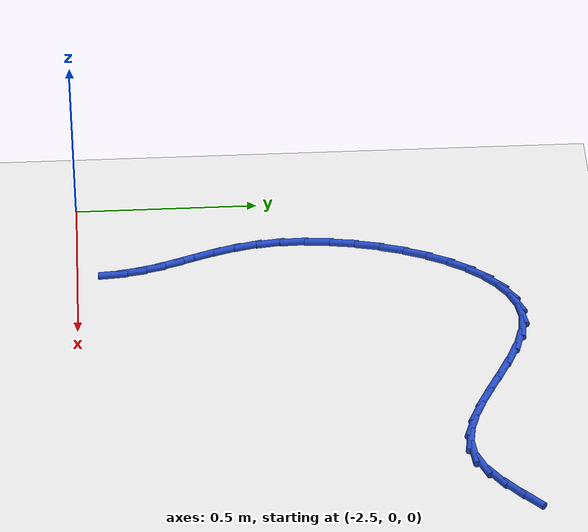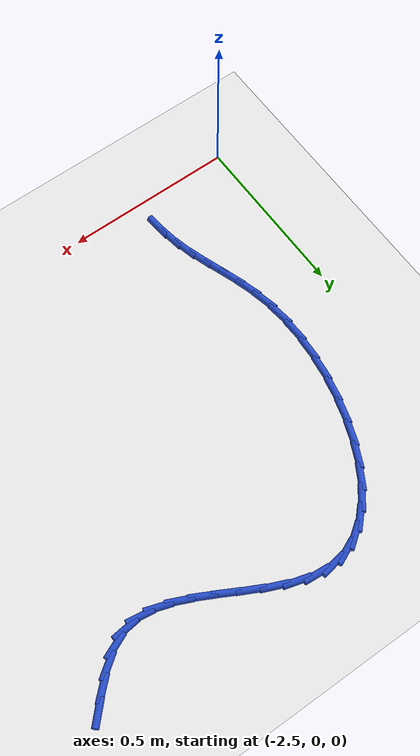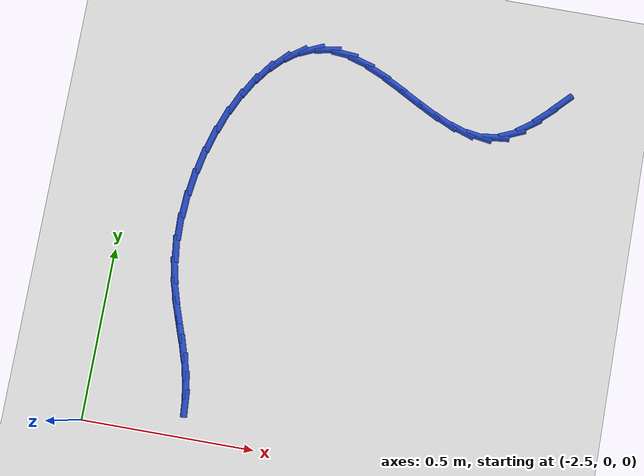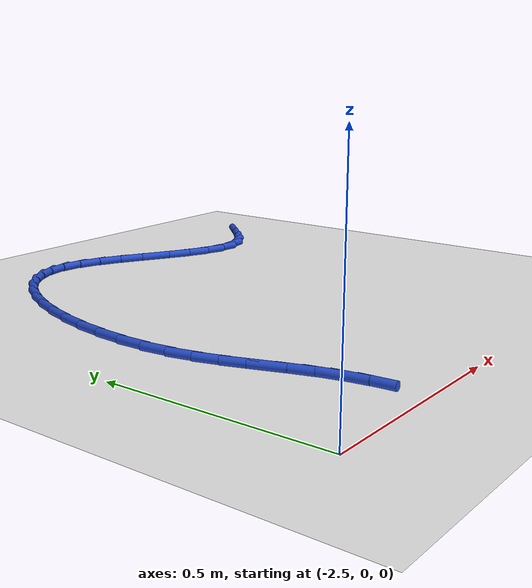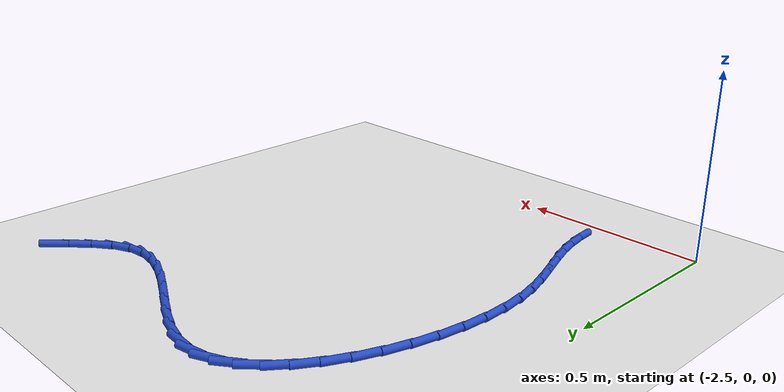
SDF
<sdf version="1.6">
 <world name="default">
  <model name="ground_plane">
   <static>1</static>
   <link name="link">
    <collision name="collision">
     <geometry><plane><normal>0 0 1</normal><size>100 100</size></plane></geometry>
     <surface><friction><ode><mu>100</mu><mu2>50</mu2></ode></friction></surface>
    </collision>
    <visual name="visual">
     <cast_shadows>0</cast_shadows>
     <geometry><plane><normal>0 0 1</normal><size>100 100</size></plane></geometry>
     <material>
      <script><uri>file://media/materials/scripts/gazebo.material</uri><name>Gazebo/WhiteGlow</name></script>
     </material>
    </visual>
   </link>
  </model>
  <model name="line">
   <link name="link_36">
    <pose>-1.2900693237859646 1.151390247275858 0.01 0 1.57 0.7939183454649416</pose>
    <collision name="collision">
     <geometry><cylinder><radius>0.01</radius><length>0.08</length></cylinder></geometry>
    </collision>
    <visual name="visual">
     <material>
      <script><name>Gazebo/Blue</name><uri>file://media/materials/scripts/gazebo.material</uri></script>
     </material>
     <geometry><cylinder><radius>0.01</radius><length>0.08</length></cylinder></geometry>
    </visual>
   </link>
   <link name="link_37">
    <pose>-1.3322619856138638 1.1084724109601836 0.01 0 1.57 0.7435088943617072</pose>
    <collision name="collision">
     <geometry><cylinder><radius>0.01</radius><length>0.08</length></cylinder></geometry>
    </collision>
    <visual name="visual">
     <material>
      <script><name>Gazebo/Blue</name><uri>file://media/materials/scripts/gazebo.material</uri></script>
     </material>
     <geometry><cylinder><radius>0.01</radius><length>0.08</length></cylinder></geometry>
    </visual>
   </link>
   <link name="link_38">
    <pose>-1.3748377329773953 1.0693221117406349 0.01 0 1.57 0.6232452287033694</pose>
    <collision name="collision">
     <geometry><cylinder><radius>0.01</radius><length>0.08</length></cylinder></geometry>
    </collision>
    <visual name="visual">
     <material>
      <script><name>Gazebo/Blue</name><uri>file://media/materials/scripts/gazebo.material</uri></script>
     </material>
     <geometry><cylinder><radius>0.01</radius><length>0.08</length></cylinder></geometry>
    </visual>
   </link>
   <link name="link_39">
    <pose>-1.4186417300604435 1.037834939533997 0.01 0 1.57 0.409792824650364</pose>
    <collision name="collision">
     <geometry><cylinder><radius>0.01</radius><length>0.08</length></cylinder></geometry>
    </collision>
    <visual name="visual">
     <material>
      <script><name>Gazebo/Blue</name><uri>file://media/materials/scripts/gazebo.material</uri></script>
     </material>
     <geometry><cylinder><radius>0.01</radius><length>0.08</length></cylinder></geometry>
    </visual>
   </link>
   <link name="link_40">
    <pose>-1.4645191410468903 1.0179064842570567 0.01 0 1.57 0.10918027138400697</pose>
    <collision name="collision">
     <geometry><cylinder><radius>0.01</radius><length>0.08</length></cylinder></geometry>
    </collision>
    <visual name="visual">
     <material>
      <script><name>Gazebo/Blue</name><uri>file://media/materials/scripts/gazebo.material</uri></script>
     </material>
     <geometry><cylinder><radius>0.01</radius><length>0.08</length></cylinder></geometry>
    </visual>
   </link>
   <link name="link_41">
    <pose>-1.5131397471966364 1.012576879549368 0.01 0 1.57 -0.15075802445603628</pose>
    <collision name="collision">
     <geometry><cylinder><radius>0.01</radius><length>0.08</length></cylinder></geometry>
    </collision>
    <visual name="visual">
     <material>
      <script><name>Gazebo/Blue</name><uri>file://media/materials/scripts/gazebo.material</uri></script>
     </material>
     <geometry><cylinder><radius>0.01</radius><length>0.08</length></cylinder></geometry>
    </visual>
   </link>
   <link name="link_42">
    <pose>-1.5642412162302415 1.020339736731174 0.01 0 1.57 -0.32469964815816693</pose>
    <collision name="collision">
     <geometry><cylinder><radius>0.01</radius><length>0.08</length></cylinder></geometry>
    </collision>
    <visual name="visual">
     <material>
      <script><name>Gazebo/Blue</name><uri>file://media/materials/scripts/gazebo.material</uri></script>
     </material>
     <geometry><cylinder><radius>0.01</radius><length>0.08</length></cylinder></geometry>
    </visual>
   </link>
   <link name="link_43">
    <pose>-1.6172527603636977 1.0381841295563536 0.01 0 1.57 -0.42981292977353774</pose>
    <collision name="collision">
     <geometry><cylinder><radius>0.01</radius><length>0.08</length></cylinder></geometry>
    </collision>
    <visual name="visual">
     <material>
      <script><name>Gazebo/Blue</name><uri>file://media/materials/scripts/gazebo.material</uri></script>
     </material>
     <geometry><cylinder><radius>0.01</radius><length>0.08</length></cylinder></geometry>
    </visual>
   </link>
   <link name="link_44">
    <pose>-1.671603394225443 1.0630981680161329 0.01 0 1.57 -0.48393693534117505</pose>
    <collision name="collision">
     <geometry><cylinder><radius>0.01</radius><length>0.08</length></cylinder></geometry>
    </collision>
    <visual name="visual">
     <material>
      <script><name>Gazebo/Blue</name><uri>file://media/materials/scripts/gazebo.material</uri></script>
     </material>
     <geometry><cylinder><radius>0.01</radius><length>0.08</length></cylinder></geometry>
    </visual>
   </link>
   <link name="link_45">
    <pose>-1.7267221324439133 1.092069962101737 0.01 0 1.57 -0.4971898282523331</pose>
    <collision name="collision">
     <geometry><cylinder><radius>0.01</radius><length>0.08</length></cylinder></geometry>
    </collision>
    <visual name="visual">
     <material>
      <script><name>Gazebo/Blue</name><uri>file://media/materials/scripts/gazebo.material</uri></script>
     </material>
     <geometry><cylinder><radius>0.01</radius><length>0.08</length></cylinder></geometry>
    </visual>
   </link>
   <link name="link_46">
    <pose>-1.782037989647548 1.1220876218043914 0.01 0 1.57 -0.4720664089780338</pose>
    <collision name="collision">
     <geometry><cylinder><radius>0.01</radius><length>0.08</length></cylinder></geometry>
    </collision>
    <visual name="visual">
     <material>
      <script><name>Gazebo/Blue</name><uri>file://media/materials/scripts/gazebo.material</uri></script>
     </material>
     <geometry><cylinder><radius>0.01</radius><length>0.08</length></cylinder></geometry>
    </visual>
   </link>
   <link name="link_47">
    <pose>-1.8369799804647826 1.1501392571153215 0.01 0 1.57 -0.4038287956365215</pose>
    <collision name="collision">
     <geometry><cylinder><radius>0.01</radius><length>0.08</length></cylinder></geometry>
    </collision>
    <visual name="visual">
     <material>
      <script><name>Gazebo/Blue</name><uri>file://media/materials/scripts/gazebo.material</uri></script>
     </material>
     <geometry><cylinder><radius>0.01</radius><length>0.08</length></cylinder></geometry>
    </visual>
   </link>
   <link name="link_48">
    <pose>-1.8909771195240574 1.1732129780257539 0.01 0 1.57 -0.2798713648292134</pose>
    <collision name="collision">
     <geometry><cylinder><radius>0.01</radius><length>0.08</length></cylinder></geometry>
    </collision>
    <visual name="visual">
     <material>
      <script><name>Gazebo/Blue</name><uri>file://media/materials/scripts/gazebo.material</uri></script>
     </material>
     <geometry><cylinder><radius>0.01</radius><length>0.08</length></cylinder></geometry>
    </visual>
   </link>
   <link name="link_49">
    <pose>-1.9434584214538078 1.1882968945269123 0.01 0 1.57 -0.08105024340451306</pose>
    <collision name="collision">
     <geometry><cylinder><radius>0.01</radius><length>0.08</length></cylinder></geometry>
    </collision>
    <visual name="visual">
     <material>
      <script><name>Gazebo/Blue</name><uri>file://media/materials/scripts/gazebo.material</uri></script>
     </material>
     <geometry><cylinder><radius>0.01</radius><length>0.08</length></cylinder></geometry>
    </visual>
   </link>
   <link name="link_50">
    <pose>-1.9938537643696883 1.1923904169079258 0.01 0 1.57 0.1767937433057892</pose>
    <collision name="collision">
     <geometry><cylinder><radius>0.01</radius><length>0.08</length></cylinder></geometry>
    </collision>
    <visual name="visual">
     <material>
      <script><name>Gazebo/Blue</name><uri>file://media/materials/scripts/gazebo.material</uri></script>
     </material>
     <geometry><cylinder><radius>0.01</radius><length>0.08</length></cylinder></geometry>
    </visual>
   </link>
   <link name="link_51">
    <pose>-2.0416961822515827 1.183842937223414 0.01 0 1.57 0.4222356093087981</pose>
    <collision name="collision">
     <geometry><cylinder><radius>0.01</radius><length>0.08</length></cylinder></geometry>
    </collision>
    <visual name="visual">
     <material>
      <script><name>Gazebo/Blue</name><uri>file://media/materials/scripts/gazebo.material</uri></script>
     </material>
     <geometry><cylinder><radius>0.01</radius><length>0.08</length></cylinder></geometry>
    </visual>
   </link>
   <link name="link_52">
    <pose>-2.0867183438056847 1.1636164303635494 0.01 0 1.57 0.6308229185235149</pose>
    <collision name="collision">
     <geometry><cylinder><radius>0.01</radius><length>0.08</length></cylinder></geometry>
    </collision>
    <visual name="visual">
     <material>
      <script><name>Gazebo/Blue</name><uri>file://media/materials/scripts/gazebo.material</uri></script>
     </material>
     <geometry><cylinder><radius>0.01</radius><length>0.08</length></cylinder></geometry>
    </visual>
   </link>
   <link name="link_53">
    <pose>-2.1286757558103555 1.1329717488559319 0.01 0 1.57 0.8001049659863537</pose>
    <collision name="collision">
     <geometry><cylinder><radius>0.01</radius><length>0.08</length></cylinder></geometry>
    </collision>
    <visual name="visual">
     <material>
      <script><name>Gazebo/Blue</name><uri>file://media/materials/scripts/gazebo.material</uri></script>
     </material>
     <geometry><cylinder><radius>0.01</radius><length>0.08</length></cylinder></geometry>
    </visual>
   </link>
   <link name="link_54">
    <pose>-2.167323925043959 1.0931697452281612 0.01 0 1.57 0.9364739404567173</pose>
    <collision name="collision">
     <geometry><cylinder><radius>0.01</radius><length>0.08</length></cylinder></geometry>
    </collision>
    <visual name="visual">
     <material>
      <script><name>Gazebo/Blue</name><uri>file://media/materials/scripts/gazebo.material</uri></script>
     </material>
     <geometry><cylinder><radius>0.01</radius><length>0.08</length></cylinder></geometry>
    </visual>
   </link>
   <link name="link_55">
    <pose>-2.2024183582848584 1.0454712720078372 0.01 0 1.57 1.0482140510514923</pose>
    <collision name="collision">
     <geometry><cylinder><radius>0.01</radius><length>0.08</length></cylinder></geometry>
    </collision>
    <visual name="visual">
     <material>
      <script><name>Gazebo/Blue</name><uri>file://media/materials/scripts/gazebo.material</uri></script>
     </material>
     <geometry><cylinder><radius>0.01</radius><length>0.08</length></cylinder></geometry>
    </visual>
   </link>
   <link name="link_56">
    <pose>-2.2337145623114147 0.9911371817225597 0.01 0 1.57 1.1426002073141763</pose>
    <collision name="collision">
     <geometry><cylinder><radius>0.01</radius><length>0.08</length></cylinder></geometry>
    </collision>
    <visual name="visual">
     <material>
      <script><name>Gazebo/Blue</name><uri>file://media/materials/scripts/gazebo.material</uri></script>
     </material>
     <geometry><cylinder><radius>0.01</radius><length>0.08</length></cylinder></geometry>
    </visual>
   </link>
   <link name="link_57">
    <pose>-2.2609680439019915 0.9314283268999284 0.01 0 1.57 1.2253784912663193</pose>
    <collision name="collision">
     <geometry><cylinder><radius>0.01</radius><length>0.08</length></cylinder></geometry>
    </collision>
    <visual name="visual">
     <material>
      <script><name>Gazebo/Blue</name><uri>file://media/materials/scripts/gazebo.material</uri></script>
     </material>
     <geometry><cylinder><radius>0.01</radius><length>0.08</length></cylinder></geometry>
    </visual>
   </link>
   <link name="link_58">
    <pose>-2.283934309834951 0.8676055600675437 0.01 0 1.57 1.3010543503079308</pose>
    <collision name="collision">
     <geometry><cylinder><radius>0.01</radius><length>0.08</length></cylinder></geometry>
    </collision>
    <visual name="visual">
     <material>
      <script><name>Gazebo/Blue</name><uri>file://media/materials/scripts/gazebo.material</uri></script>
     </material>
     <geometry><cylinder><radius>0.01</radius><length>0.08</length></cylinder></geometry>
    </visual>
   </link>
   <link name="link_59">
    <pose>-2.302368866888657 0.8009297337530047 0.01 0 1.57 1.3733338892159097</pose>
    <collision name="collision">
     <geometry><cylinder><radius>0.01</radius><length>0.08</length></cylinder></geometry>
    </collision>
    <visual name="visual">
     <material>
      <script><name>Gazebo/Blue</name><uri>file://media/materials/scripts/gazebo.material</uri></script>
     </material>
     <geometry><cylinder><radius>0.01</radius><length>0.08</length></cylinder></geometry>
    </visual>
   </link>
   <link name="link_60">
    <pose>-2.3160272218414706 0.7326617004839118 0.01 0 1.57 1.445540973952849</pose>
    <collision name="collision">
     <geometry><cylinder><radius>0.01</radius><length>0.08</length></cylinder></geometry>
    </collision>
    <visual name="visual">
     <material>
      <script><name>Gazebo/Blue</name><uri>file://media/materials/scripts/gazebo.material</uri></script>
     </material>
     <geometry><cylinder><radius>0.01</radius><length>0.08</length></cylinder></geometry>
    </visual>
   </link>
   <link name="link_61">
    <pose>-2.324664881471755 0.6640623127878641 0.01 0 1.57 1.521000425694992</pose>
    <collision name="collision">
     <geometry><cylinder><radius>0.01</radius><length>0.08</length></cylinder></geometry>
    </collision>
    <visual name="visual">
     <material>
      <script><name>Gazebo/Blue</name><uri>file://media/materials/scripts/gazebo.material</uri></script>
     </material>
     <geometry><cylinder><radius>0.01</radius><length>0.08</length></cylinder></geometry>
    </visual>
   </link>
   <link name="link_62">
    <pose>-2.328037352557874 0.5963924231924627 0.01 0 1.57 -1.538168543299632</pose>
    <collision name="collision">
     <geometry><cylinder><radius>0.01</radius><length>0.08</length></cylinder></geometry>
    </collision>
    <visual name="visual">
     <material>
      <script><name>Gazebo/Blue</name><uri>file://media/materials/scripts/gazebo.material</uri></script>
     </material>
     <geometry><cylinder><radius>0.01</radius><length>0.08</length></cylinder></geometry>
    </visual>
   </link>
   <link name="link_63">
    <pose>-2.3259001418781886 0.530912884225306 0.01 0 1.57 -1.4443915290629803</pose>
    <collision name="collision">
     <geometry><cylinder><radius>0.01</radius><length>0.08</length></cylinder></geometry>
    </collision>
    <visual name="visual">
     <material>
      <script><name>Gazebo/Blue</name><uri>file://media/materials/scripts/gazebo.material</uri></script>
     </material>
     <geometry><cylinder><radius>0.01</radius><length>0.08</length></cylinder></geometry>
    </visual>
   </link>
   <link name="link_64">
    <pose>-2.3180164360766895 0.4688766951300189 0.01 0 1.57 -1.3480493920339112</pose>
    <collision name="collision">
     <geometry><cylinder><radius>0.01</radius><length>0.08</length></cylinder></geometry>
    </collision>
    <visual name="visual">
     <material>
      <script><name>Gazebo/Blue</name><uri>file://media/materials/scripts/gazebo.material</uri></script>
     </material>
     <geometry><cylinder><radius>0.01</radius><length>0.08</length></cylinder></geometry>
    </visual>
   </link>
   <link name="link_65">
    <pose>-2.3048632987177053 0.41080685823991936 0.01 0 1.57 -1.2760984443607262</pose>
    <collision name="collision">
     <geometry><cylinder><radius>0.01</radius><length>0.08</length></cylinder></geometry>
    </collision>
    <visual name="visual">
     <material>
      <script><name>Gazebo/Blue</name><uri>file://media/materials/scripts/gazebo.material</uri></script>
     </material>
     <geometry><cylinder><radius>0.01</radius><length>0.08</length></cylinder></geometry>
    </visual>
   </link>
   <link name="link_66">
    <pose>-2.288201294398937 0.35591389223457726 0.01 0 1.57 -1.236639593016519</pose>
    <collision name="collision">
     <geometry><cylinder><radius>0.01</radius><length>0.08</length></cylinder></geometry>
    </collision>
    <visual name="visual">
     <material>
      <script><name>Gazebo/Blue</name><uri>file://media/materials/scripts/gazebo.material</uri></script>
     </material>
     <geometry><cylinder><radius>0.01</radius><length>0.08</length></cylinder></geometry>
    </visual>
   </link>
   <link name="link_67">
    <pose>-2.269925033604761 0.3032712430288806 0.01 0 1.57 -1.233526262270694</pose>
    <collision name="collision">
     <geometry><cylinder><radius>0.01</radius><length>0.08</length></cylinder></geometry>
    </collision>
    <visual name="visual">
     <material>
      <script><name>Gazebo/Blue</name><uri>file://media/materials/scripts/gazebo.material</uri></script>
     </material>
     <geometry><cylinder><radius>0.01</radius><length>0.08</length></cylinder></geometry>
    </visual>
   </link>
   <link name="link_68">
    <pose>-2.2519291268195554 0.25195235653771625 0.01 0 1.57 -1.2695597313269982</pose>
    <collision name="collision">
     <geometry><cylinder><radius>0.01</radius><length>0.08</length></cylinder></geometry>
    </collision>
    <visual name="visual">
     <material>
      <script><name>Gazebo/Blue</name><uri>file://media/materials/scripts/gazebo.material</uri></script>
     </material>
     <geometry><cylinder><radius>0.01</radius><length>0.08</length></cylinder></geometry>
    </visual>
   </link>
   <link name="link_69">
    <pose>-2.2361081845276973 0.20103067867597263 0.01 0 1.57 -1.3428761525967992</pose>
    <collision name="collision">
     <geometry><cylinder><radius>0.01</radius><length>0.08</length></cylinder></geometry>
    </collision>
    <visual name="visual">
     <material>
      <script><name>Gazebo/Blue</name><uri>file://media/materials/scripts/gazebo.material</uri></script>
     </material>
     <geometry><cylinder><radius>0.01</radius><length>0.08</length></cylinder></geometry>
    </visual>
   </link>
   <link name="link_70">
    <pose>-2.2241891853914924 0.14964473601878212 0.01 0 1.57 -1.4225137728268966</pose>
    <collision name="collision">
     <geometry><cylinder><radius>0.01</radius><length>0.08</length></cylinder></geometry>
    </collision>
    <visual name="visual">
     <material>
      <script><name>Gazebo/Blue</name><uri>file://media/materials/scripts/gazebo.material</uri></script>
     </material>
     <geometry><cylinder><radius>0.01</radius><length>0.08</length></cylinder></geometry>
    </visual>
   </link>
   <link name="link_71">
    <pose>-2.216401991564229 0.0975142892391193 0.01 0 1.57 -1.4912507556115309</pose>
    <collision name="collision">
     <geometry><cylinder><radius>0.01</radius><length>0.08</length></cylinder></geometry>
    </collision>
    <visual name="visual">
     <material>
      <script><name>Gazebo/Blue</name><uri>file://media/materials/scripts/gazebo.material</uri></script>
     </material>
     <geometry><cylinder><radius>0.01</radius><length>0.08</length></cylinder></geometry>
    </visual>
   </link>
  </model>
 </world>
</sdf>
